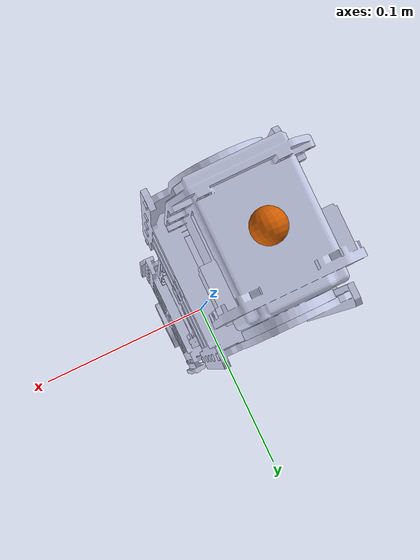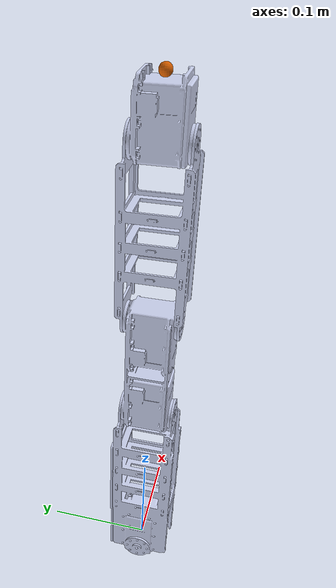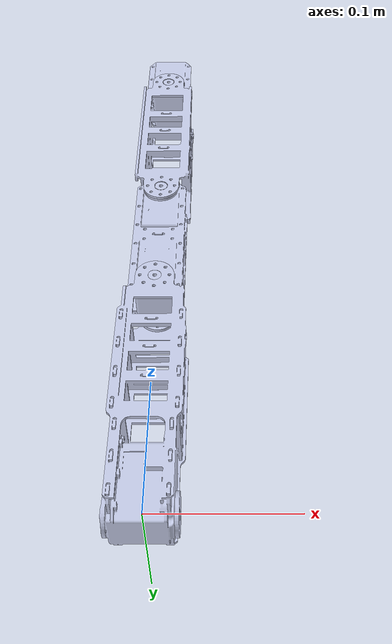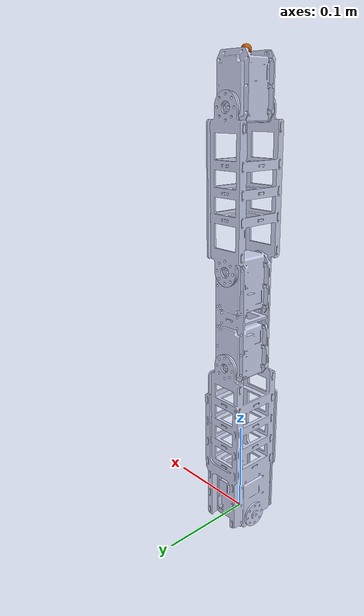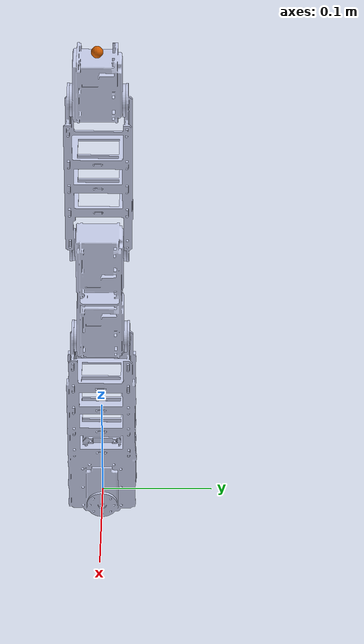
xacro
<?xml version="1.0"?>

<robot name="asap_manipulator_4r" xmlns:xacro="http://ros.org/wiki/xacro">

  <xacro:include filename="$(find aerial_manipulators_description)/urdf/manipulator_base.urdf.xacro" />

  <link name="world"></link>

  <xacro:asap_manipulator_4r
    parent="world">
    <origin xyz="0 0 0" rpy="0 -${pi/2} 0"/>
  </xacro:asap_manipulator_4r>

  <xacro:transmisija
    trans_number="1"
    joint_name="joint1">
  </xacro:transmisija>

  <xacro:transmisija
    trans_number="2"
    joint_name="joint2">
  </xacro:transmisija>

  <xacro:transmisija
    trans_number="3"
    joint_name="joint3">
  </xacro:transmisija>

  <xacro:transmisija
    trans_number="4"
    joint_name="joint4">
  </xacro:transmisija>

</robot>

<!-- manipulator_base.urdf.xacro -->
<robot xmlns:xacro="http://ros.org/wiki/xacro">

  <xacro:macro name="wp_manipulator" params="parent *origin">

    <xacro:property name="a0" value="0.04526"/>
    <xacro:property name="a1" value="0.122490"/>
    <xacro:property name="a2" value="0.1365"/>
    <xacro:property name="a3" value="0.075511"/>
    <xacro:property name="a4" value="0.072489"/>
    <xacro:property name="d5" value="0.04526"/>
    <xacro:property name="theta1" value="${pi/2}"/>
    <xacro:property name="alpha2" value="${-pi/2}"/>

    <xacro:property name="mass2" value="0.03"/>
    <xacro:property name="mass1" value="${mass2*a1/a2}"/>
    <xacro:property name="mass3" value="${mass2*a3/a2}"/>
    <xacro:property name="mass4" value="${mass2*a4/a2}"/>
    <xacro:property name="mass5" value="${mass2*d5/a2}"/>

    <xacro:property name="rad" value="0.03"/>

    <link name='base'>
      <inertial>
        <mass value="${mass5}" />
        <origin xyz="0 -${a0/2} 0" rpy="0 0 0"/>
        <inertia
          ixx="${1/2 * mass5 * rad * rad}" ixy="0" ixz="0"
          iyx="0" iyy="${1/12 * mass5 * (3*rad*rad + a0*a0)}" iyz="0"
          izx="0" izy="0" izz="${1/12 * mass5 * (3*rad*rad + a0*a0)}"/>
      </inertial>

      <visual>
        <origin xyz="0 0 0" rpy="0 0 0" />
        <geometry>
          <mesh filename="package://aerial_manipulators_description/meshes/wp_manipulator/base.dae"
            scale="1 1 1" />
        </geometry>
      </visual>
    </link>

    <link name='link1'>
      <inertial>
        <mass value="${mass1}" />
        <origin xyz="0 ${a1/2} 0" rpy="0 0 0"/>
        <inertia
          ixx="${1/12 * mass1 * (3*rad*rad + a1*a1)}" ixy="0" ixz="0"
          iyx="0" iyy="${1/2 * mass1 * rad * rad}" iyz="0"
          izx="0" izy="0" izz="${1/12 * mass1 * (3*rad*rad + a1*a1)}"/>
      </inertial>

      <visual>
        <origin xyz="0 0 0" rpy="0 0 0" />
        <geometry>
          <mesh filename="package://aerial_manipulators_description/meshes/wp_manipulator/link1.dae"
            scale="1 1 1" />
        </geometry>
      </visual>
    </link>

    <link name='link2'>
      <inertial>
        <mass value="${mass2}" />
        <origin xyz="${a2/2} 0 0" rpy="0 0 0"/>
        <inertia
          ixx="${1/2 * mass2 * rad * rad}" ixy="0" ixz="0"
          iyx="0" iyy="${1/12 * mass2 * (3*rad*rad + a2*a2)}" iyz="0"
          izx="0" izy="0" izz="${1/12 * mass2 * (3*rad*rad + a2*a2)}"/>
      </inertial>

      <visual>
        <origin xyz="0 0 0" rpy="0 0 -${pi / 2}" />
        <geometry>
          <mesh filename="package://aerial_manipulators_description/meshes/wp_manipulator/link2.dae"
            scale="1 1 1" />
        </geometry>
      </visual>
    </link>

    <link name='link3'>
      <inertial>
        <mass value="${mass3}" />
        <origin xyz="${a3/2} 0 0" rpy="0 0 0"/>
        <inertia
          ixx="${1/2 * mass3 * rad * rad}" ixy="0" ixz="0"
          iyx="0" iyy="${1/12 * mass3 * (3*rad*rad + a3*a3)}" iyz="0"
          izx="0" izy="0" izz="${1/12 * mass3 * (3*rad*rad + a3*a3)}"/>
      </inertial>

      <visual>
        <origin xyz="0 0 0" rpy="0 ${pi / 2} ${-pi / 2}" />
        <geometry>
          <mesh filename="package://aerial_manipulators_description/meshes/wp_manipulator/link3.dae"
            scale="1 1 1" />
        </geometry>
      </visual>
    </link>

    <link name='link4'>
      <inertial>
        <mass value="${mass4}" />
        <origin xyz="${a4/2} 0 0" rpy="0 0 0"/>
        <inertia
          ixx="${1/2 * mass4 * rad * rad}" ixy="0" ixz="0"
          iyx="0" iyy="${1/12 * mass4 * (3*rad*rad + a4*a4)}" iyz="0"
          izx="0" izy="0" izz="${1/12 * mass4 * (3*rad*rad + a4*a4)}"/>
      </inertial>

      <visual>
        <origin xyz="0 0 0" rpy="0 ${pi / 2} -${pi / 2}" />
        <geometry>
          <mesh filename="package://aerial_manipulators_description/meshes/wp_manipulator/link4.dae"
            scale="1 1 1" />
        </geometry>
      </visual>
    </link>

    <link name='link5'>
      <inertial>
        <mass value="${mass5}" />
        <origin xyz="${d5/2} 0 0" rpy="0 0 0"/>
        <inertia
          ixx="${1/2 * mass5 * rad * rad}" ixy="0" ixz="0"
          iyx="0" iyy="${1/12 * mass5 * (3*rad*rad + d5*d5)}" iyz="0"
          izx="0" izy="0" izz="${1/12 * mass5 * (3*rad*rad + d5*d5)}"/>
      </inertial>

      <visual>
        <origin xyz="0 0 0" rpy="0 ${pi / 2} 0" />
        <geometry>
          <mesh filename="package://aerial_manipulators_description/meshes/wp_manipulator/link5.dae"
            scale="1 1 1" />
        </geometry>
      </visual>
    </link>

    <link name='end_effector_base'>
      <inertial>
        <mass value="0.00001" />
        <origin xyz="0 0 0" rpy="0 0 0"/>
        <inertia
          ixx="0.00001" ixy="0" ixz="0"
          iyx="0" iyy="0.00001" iyz="0"
          izx="0" izy="0" izz="0.00001"/>
      </inertial>

      <visual>
        <geometry>
          <sphere radius="0.005"/>
        </geometry>
      </visual>
    </link>

    <joint name="wp_base_joint" type="fixed">
      <parent link="${parent}"/>
      <child link="base"/>
      <xacro:insert_block name="origin"/>
    </joint>

    <joint name="joint1" type="revolute">
      <parent link="base"/>
      <child link="link1"/>
      <!-- Adjust Gazebo coordinate system to link1 coordinate system -->
      <origin xyz="0 0 0" rpy="0 0 0"/>
      <limit upper="1.57" lower="-1.57" effort="10000000" velocity="46"/>
      <axis xyz="0 0 1" />
    </joint>

    <joint name="joint2" type="revolute">
      <parent link="link1"/>
      <child link="link2"/>
      <origin xyz="0 ${a1} 0" rpy="0 0 ${theta1}"/>
      <limit upper="2.0" lower="-2.0" effort="10000000" velocity="46"/>
      <axis xyz="0 0 1" />
    </joint>

    <joint name="joint3" type="revolute">
      <parent link="link2"/>
      <child link="link3"/>
      <origin xyz="${a2} 0 0" rpy="${alpha2} 0 0"/>
      <limit upper="1.57" lower="-1.57" effort="10000000" velocity="46"/>
      <axis xyz="0 0 1" />
    </joint>

    <joint name="joint4" type="revolute">
      <parent link="link3"/>
      <child link="link4"/>
      <origin xyz="${a3} 0 0" rpy="0 0 0"/>
      <limit upper="2.0" lower="-2.0" effort="10000000" velocity="46"/>
      <axis xyz="0 0 1" />
    </joint>

    <joint name="joint5" type="revolute">
      <parent link="link4"/>
      <child link="link5"/>
      <origin xyz="${a4} 0 0" rpy="0 0 0"/>
      <limit upper="2.3" lower="-2.3" effort="10000000" velocity="46"/>
      <axis xyz="0 0 1" />
    </joint>

    <joint name="jointEndEffectorBase" type="fixed">
      <parent link="link5"/>
      <child link="end_effector_base"/>
      <origin xyz="${d5} 0 0" rpy="0 0 0"/>
    </joint>
  </xacro:macro>

  <xacro:macro name="wp_manipulator_3rx"
  params="parent *origin">

    <xacro:property name="a0" value="0.04526"/>
    <xacro:property name="a1" value="0.122490"/>
    <xacro:property name="a2" value="0.1365"/>
    <xacro:property name="a3" value="0.075511"/>
    <xacro:property name="a4" value="0.072489"/>
    <xacro:property name="d5" value="0.04526"/>
    <xacro:property name="theta1" value="${pi/2}"/>
    <xacro:property name="alpha2" value="${-pi/2}"/>

    <xacro:property name="mass2" value="0.03"/>
    <xacro:property name="mass1" value="${mass2*a1/a2}"/>
    <xacro:property name="mass3" value="${mass2*a3/a2}"/>
    <xacro:property name="mass4" value="${mass2*a4/a2}"/>
    <xacro:property name="mass5" value="${mass2*d5/a2}"/>

    <xacro:property name="rad" value="0.03"/>

    <link name='base'>
      <inertial>
        <mass value="${mass2}" />
        <origin xyz="${a2/2} 0 0" rpy="0 0 0"/>
        <inertia
          ixx="${1/2 * mass2 * rad * rad}" ixy="0" ixz="0"
          iyx="0" iyy="${1/12 * mass2 * (3*rad*rad + a2*a2)}" iyz="0"
          izx="0" izy="0" izz="${1/12 * mass2 * (3*rad*rad + a2*a2)}"/>
      </inertial>

      <visual>
        <origin xyz="0 0 0" rpy="0 0 -${pi / 2}" />
        <geometry>
          <mesh filename="package://aerial_manipulators_description/meshes/wp_manipulator/link2.dae"
            scale="1 1 1" />
        </geometry>
      </visual>
    </link>

    <link name='link1'>
      <inertial>
        <mass value="${mass3}" />
        <origin xyz="${a3/2} 0 0" rpy="0 0 0"/>
        <inertia
          ixx="${1/2 * mass3 * rad * rad}" ixy="0" ixz="0"
          iyx="0" iyy="${1/12 * mass3 * (3*rad*rad + a3*a3)}" iyz="0"
          izx="0" izy="0" izz="${1/12 * mass3 * (3*rad*rad + a3*a3)}"/>
      </inertial>

      <visual>
        <origin xyz="0 0 0" rpy="0 ${pi / 2} ${-pi / 2}" />
        <geometry>
          <mesh filename="package://aerial_manipulators_description/meshes/wp_manipulator/link3.dae"
            scale="1 1 1" />
        </geometry>
      </visual>
    </link>

    <link name='link2'>
      <inertial>
        <mass value="${mass4}" />
        <origin xyz="${a4/2} 0 0" rpy="0 0 0"/>
        <inertia
          ixx="${1/2 * mass4 * rad * rad}" ixy="0" ixz="0"
          iyx="0" iyy="${1/12 * mass4 * (3*rad*rad + a4*a4)}" iyz="0"
          izx="0" izy="0" izz="${1/12 * mass4 * (3*rad*rad + a4*a4)}"/>
      </inertial>

      <visual>
        <origin xyz="0 0 0" rpy="0 ${pi / 2} -${pi / 2}" />
        <geometry>
          <mesh filename="package://aerial_manipulators_description/meshes/wp_manipulator/link4.dae"
            scale="1 1 1" />
        </geometry>
      </visual>
    </link>

    <link name='link3'>
      <inertial>
        <mass value="${mass5}" />
        <origin xyz="${d5/2} 0 0" rpy="0 0 0"/>
        <inertia
          ixx="${1/2 * mass5 * rad * rad}" ixy="0" ixz="0"
          iyx="0" iyy="${1/12 * mass5 * (3*rad*rad + d5*d5)}" iyz="0"
          izx="0" izy="0" izz="${1/12 * mass5 * (3*rad*rad + d5*d5)}"/>
      </inertial>

      <visual>
        <origin xyz="0 0 0" rpy="0 ${pi / 2} 0" />
        <geometry>
          <mesh filename="package://aerial_manipulators_description/meshes/wp_manipulator/link5.dae"
            scale="1 1 1" />
        </geometry>
      </visual>
    </link>

    <link name='end_effector_base'>
      <inertial>
        <mass value="0.00001" />
        <origin xyz="0 0 0" rpy="0 0 0"/>
        <inertia
          ixx="0.00001" ixy="0" ixz="0"
          iyx="0" iyy="0.00001" iyz="0"
          izx="0" izy="0" izz="0.00001"/>
      </inertial>

      <visual>
        <geometry>
          <sphere radius="0.005"/>
        </geometry>
      </visual>
    </link>

    <joint name="wp_base_joint" type="fixed">
      <parent link="${parent}"/>
      <child link="base"/>
      <xacro:insert_block name="origin"/>
    </joint>

    <joint name="joint1" type="revolute">
      <parent link="base"/>
      <child link="link1"/>
      <origin xyz="${a2} 0 0" rpy="${alpha2} 0 0"/>
      <limit upper="1.57" lower="-1.57" effort="10000000" velocity="46"/>
      <axis xyz="0 0 1" />
    </joint>

    <joint name="joint2" type="revolute">
      <parent link="link1"/>
      <child link="link2"/>
      <origin xyz="${a3} 0 0" rpy="0 0 0"/>
      <limit upper="2.0" lower="-2.0" effort="10000000" velocity="46"/>
      <axis xyz="0 0 1" />
    </joint>

    <joint name="joint3" type="revolute">
      <parent link="link2"/>
      <child link="link3"/>
      <origin xyz="${a4} 0 0" rpy="0 0 0"/>
      <limit upper="2.3" lower="-2.3" effort="10000000" velocity="46"/>
      <axis xyz="0 0 1" />
    </joint>

    <joint name="jointEndEffectorBase" type="fixed">
      <parent link="link3"/>
      <child link="end_effector_base"/>
      <origin xyz="${d5} 0 0" rpy="0 0 0"/>
    </joint>

  </xacro:macro>

  <xacro:macro name="wp_manipulator_3r"
  params="parent *origin">

    <xacro:property name="a0" value="0.04526"/>
    <xacro:property name="a1" value="0.122490"/>
    <xacro:property name="a2" value="0.1365"/>
    <xacro:property name="a3" value="0.075511"/>
    <xacro:property name="a4" value="0.072489"/>
    <xacro:property name="d5" value="0.035"/>
    <xacro:property name="theta1" value="${pi/2}"/>
    <xacro:property name="alpha2" value="${-pi/2}"/>

    <xacro:property name="mass2" value="0.03"/>
    <xacro:property name="mass1" value="${mass2*a1/a2}"/>
    <xacro:property name="mass3" value="${mass2*a3/a2}"/>
    <xacro:property name="mass4" value="${mass2*a4/a2}"/>
    <xacro:property name="mass5" value="${mass2*d5/a2}"/>

    <xacro:property name="rad" value="0.03"/>

    <link name='base'>
      <inertial>
        <mass value="${mass5}" />
        <origin xyz="0 -${a0/2} 0" rpy="0 0 0"/>
        <inertia
          ixx="${1/2 * mass5 * rad * rad}" ixy="0" ixz="0"
          iyx="0" iyy="${1/12 * mass5 * (3*rad*rad + a0*a0)}" iyz="0"
          izx="0" izy="0" izz="${1/12 * mass5 * (3*rad*rad + a0*a0)}"/>
      </inertial>

      <visual>
        <origin xyz="0 0 0" rpy="0 0 0" />
        <geometry>
          <mesh filename="package://aerial_manipulators_description/meshes/wp_manipulator/base.dae"
            scale="1 1 1" />
        </geometry>
      </visual>
    </link>

    <link name='link1'>
      <inertial>
        <mass value="${mass2}" />
        <origin xyz="${a2/2} 0 0" rpy="0 0 0"/>
        <inertia
          ixx="${1/2 * mass2 * rad * rad}" ixy="0" ixz="0"
          iyx="0" iyy="${1/12 * mass2 * (3*rad*rad + a2*a2)}" iyz="0"
          izx="0" izy="0" izz="${1/12 * mass2 * (3*rad*rad + a2*a2)}"/>
      </inertial>

      <visual>
        <origin xyz="0 0 0" rpy="0 0 0" />
        <geometry>
          <mesh filename="package://aerial_manipulators_description/meshes/wp_manipulator/link2_rotated.dae"
            scale="1 1 1" />
        </geometry>
      </visual>
    </link>

    <link name='link2'>
      <inertial>
        <mass value="${mass4}" />
        <origin xyz="${a4/2} 0 0" rpy="0 0 0"/>
        <inertia
          ixx="${1/2 * mass4 * rad * rad}" ixy="0" ixz="0"
          iyx="0" iyy="${1/12 * mass4 * (3*rad*rad + a4*a4)}" iyz="0"
          izx="0" izy="0" izz="${1/12 * mass4 * (3*rad*rad + a4*a4)}"/>
      </inertial>

      <visual>
        <origin xyz="0 0 0" rpy="0 ${pi/2} ${-pi/2}" />
        <geometry>
          <mesh filename="package://aerial_manipulators_description/meshes/wp_manipulator/link4.dae"
            scale="1 1 1" />
        </geometry>
      </visual>
    </link>

    <link name='link3'>
      <inertial>
        <mass value="${mass5}" />
        <origin xyz="${a0/2} 0 0" rpy="0 0 0"/>
        <inertia
          ixx="${1/2 * mass5 * rad * rad}" ixy="0" ixz="0"
          iyx="0" iyy="${1/12 * mass5 * (3*rad*rad + a0*a0)}" iyz="0"
          izx="0" izy="0" izz="${1/12 * mass5 * (3*rad*rad + a0*a0)}"/>
      </inertial>

      <visual>
        <origin xyz="0 0 0" rpy="0 ${pi / 2} 0" />
        <geometry>
          <mesh filename="package://aerial_manipulators_description/meshes/wp_manipulator/link5.dae"
            scale="1 1 1" />
        </geometry>
      </visual>
    </link>

    <link name='end_effector_base'>
      <inertial>
        <mass value="0.00001" />
        <origin xyz="0 0 0" rpy="0 0 0"/>
        <inertia
          ixx="0.00001" ixy="0" ixz="0"
          iyx="0" iyy="0.00001" iyz="0"
          izx="0" izy="0" izz="0.00001"/>
      </inertial>

      <visual>
        <geometry>
          <sphere radius="0.005"/>
        </geometry>
      </visual>
    </link>

    <joint name="wp_base_joint" type="fixed">
      <parent link="${parent}"/>
      <child link="base"/>
      <xacro:insert_block name="origin"/>
    </joint>

    <joint name="joint1" type="revolute">
      <parent link="base"/>
      <child link="link1"/>
      <!-- Adjust Gazebo coordinate system to link1 coordinate system -->
      <origin xyz="0 0 0" rpy="0 0 0"/>
      <limit upper="1.57" lower="-0.25" effort="10000000" velocity="46"/>
      <axis xyz="0 0 1" />
    </joint>

    <joint name="joint2" type="revolute">
      <parent link="link1"/>
      <child link="link2"/>
      <origin xyz="0 ${a2} 0" rpy="${-pi/2} 0 ${pi/2}"/>
      <limit upper="1.57" lower="-1.57" effort="10000000" velocity="46"/>
      <axis xyz="0 0 1" />
    </joint>

    <joint name="joint3" type="revolute">
      <parent link="link2"/>
      <child link="link3"/>
      <origin xyz="${a4} 0 0" rpy="0 0 0"/>
      <limit upper="1.57" lower="-1.57" effort="10000000" velocity="46"/>
      <axis xyz="0 0 1" />
    </joint>

    <joint name="jointEndEffectorBase" type="fixed">
      <parent link="link3"/>
      <child link="end_effector_base"/>
      <origin xyz="${d5} 0 0" rpy="0 0 0"/>
    </joint>

  </xacro:macro>

  <xacro:macro name="asap_manipulator"
  params="parent *origin">

    <link name='base'>
      <inertial>
        <mass value="0.0805"/>
        <origin rpy="0 0 0" xyz="-0.01720524 -0.00000105 -0.00015302"/>
        <inertia ixx="0.00002046" ixy="0.0" ixz="0.00000037" iyx="0.0" iyy="0.00003873" iyz="0.0" izx="0.00000037" izy="0.0" izz="0.00003291"/>
      </inertial>

      <visual>
        <origin xyz="0 0 0" rpy="0 0 0" />
        <geometry>
          <mesh filename="package://aerial_manipulators_description/meshes/asap_manipulator/base_link.dae" scale="1 1 1"/>
        </geometry>
      </visual>
    </link>

    <link name="link1">
      <inertial>
        <mass value="0.032"/>
        <origin rpy="0 0 0" xyz="0.07549999 0.0 0.0"/>
        <inertia ixx="0.00002461" ixy="0.0" ixz="0.0" iyx="0.0" iyy="0.00007186" iyz="0.0" izx="0.0" izy="0.0" izz="0.00006467"/>
      </inertial>

      <visual>
        <origin rpy="0 0 0" xyz="0.0 0.0 0.0"/>
        <geometry>
          <mesh filename="package://aerial_manipulators_description/meshes/asap_manipulator/link1.dae" scale="1 1 1"/>
        </geometry>
      </visual>
    </link>

    <link name="link2">
      <inertial>
        <mass value="0.124"/>
        <origin rpy="0 0 0" xyz="0.04579089 0.00000307 -0.00007578"/>
        <inertia ixx="0.00005883" ixy="0.0" ixz="-0.00000004" iyx="0.0" iyy="0.00032946" iyz="0.0" izx="-0.00000004" izy="0.0" izz="0.00033468"/>
      </inertial>

      <visual>
        <origin rpy="0 0 0" xyz="0.0 0.0 0.0"/>
        <geometry>
          <mesh filename="package://aerial_manipulators_description/meshes/asap_manipulator/link2.dae" scale="1 1 1"/>
        </geometry>
      </visual>
    </link>

    <link name="link3">
      <inertial>
        <mass value="0.154"/>
        <origin rpy="0 0 0" xyz="0.05074787 -0.00000371 -0.00012646"/>
        <inertia ixx="0.00003915" ixy="0.0" ixz="0.0" iyx="0.0" iyy="0.00025748" iyz="0.0" izx="0.0" izy="0.0" izz="0.00024598"/>
      </inertial>

      <visual>
       <origin rpy="0 0 0" xyz="0.0 0.0 0.0"/>
       <geometry>
         <mesh filename="package://aerial_manipulators_description/meshes/asap_manipulator/link3.dae" scale="1 1 1"/>
       </geometry>
      </visual>
    </link>

    <link name="link4">
      <inertial>
       <mass value="0.03253"/>
        <origin rpy="0 0 0" xyz="0.07550004 0.0 0.0"/>
        <inertia ixx="0.00002461" ixy="0.0" ixz="0.0" iyx="0.0" iyy="0.00007186" iyz="0.0" izx="0.0" izy="0.0" izz="0.00006467"/>
      </inertial>

      <visual>
       <origin rpy="0 0 0" xyz="0.0 0.0 0.0"/>
       <geometry>
         <mesh filename="package://aerial_manipulators_description/meshes/asap_manipulator/link4.dae" scale="1 1 1"/>
       </geometry>
      </visual>
    </link>

    <link name="link5">
      <inertial>
       <mass value="0.0073"/>
        <origin rpy="0 0 0" xyz="0.01488432 0.0 -0.00013634"/>
        <inertia ixx="0.0000001754" ixy="0.0" ixz="-0.0000000035" iyx="0.0" iyy="0.0000003064" iyz="0.0" izx="-0.0000000035" izy="0.0" izz="0.0000002513"/>
      </inertial>

      <visual>
       <origin rpy="0 0 0" xyz="0.0 0.0 0.0"/>
       <geometry>
         <mesh filename="package://aerial_manipulators_description/meshes/asap_manipulator/link5.dae" scale="1 1 1"/>
       </geometry>
      </visual>
    </link>

    <link name='end_effector_base'>
      <inertial>
        <mass value="0.00001" />
        <origin xyz="0 0 0" rpy="0 0 0"/>
        <inertia
          ixx="0.00001" ixy="0" ixz="0"
          iyx="0" iyy="0.00001" iyz="0"
          izx="0" izy="0" izz="0.00001"/>
      </inertial>

      <visual>
        <geometry>
          <sphere radius="0.005"/>
        </geometry>
      </visual>
    </link>

    <joint name="asap_base_joint" type="fixed">
      <parent link="${parent}"/>
      <child link="base"/>
      <xacro:insert_block name="origin"/>
    </joint>

    <joint name="joint1" type="revolute">
      <parent link="base"/>
      <child link="link1"/>
      <!-- Adjust Gazebo coordinate system to link1 coordinate system -->
      <origin xyz="0 0 0" rpy="0 0 0"/>
      <limit upper="1.57" lower="-1.57" effort="10000000" velocity="46"/>
      <axis xyz="0 0 1" />
    </joint>

    <joint name="joint2" type="revolute">
      <parent link="link1"/>
      <child link="link2"/>
      <origin xyz="0.151 0 0" rpy="0 0 0"/>
      <limit upper="2.0" lower="-2.0" effort="10000000" velocity="46"/>
      <axis xyz="0 0 1" />
    </joint>

    <joint name="joint3" type="revolute">
      <parent link="link2"/>
      <child link="link3"/>
      <origin xyz="0.17955 0 0" rpy="${pi/2} 0 0"/>
      <limit upper="1.57" lower="-1.57" effort="10000000" velocity="46"/>
      <axis xyz="0 0 1" />
    </joint>

    <joint name="joint4" type="revolute">
      <parent link="link3"/>
      <child link="link4"/>
      <origin xyz="0.1015 0 0" rpy="0 0 0"/>
      <limit upper="2.0" lower="-2.0" effort="10000000" velocity="46"/>
      <axis xyz="0 0 1" />
    </joint>

    <joint name="joint5" type="revolute">
      <parent link="link4"/>
      <child link="link5"/>
      <origin xyz="0.151 0 0" rpy="0 0 0"/>
      <limit upper="2.3" lower="-2.3" effort="10000000" velocity="46"/>
      <axis xyz="0 0 1" />
    </joint>

    <joint name="jointEndEffectorBase" type="fixed">
      <parent link="link5"/>
      <child link="end_effector_base"/>
      <origin xyz="0.048 0 0" rpy="0 0 0"/>
    </joint>

  </xacro:macro>

  <xacro:macro name="asap_manipulator_4r"
  params="parent *origin">

    <link name="link1">
      <inertial>
        <mass value="0.124"/>
        <origin rpy="0 0 0" xyz="0.04579089 0.00000307 -0.00007578"/>
        <inertia ixx="0.00005883" ixy="0.0" ixz="-0.00000004" iyx="0.0" iyy="0.00032946" iyz="0.0" izx="-0.00000004" izy="0.0" izz="0.00033468"/>
      </inertial>

      <visual>
        <origin rpy="0 0 0" xyz="0.0 0.0 0.0"/>
        <geometry>
          <mesh filename="package://aerial_manipulators_description/meshes/asap_manipulator/link2.dae" scale="1 1 1"/>
        </geometry>
      </visual>
    </link>

    <link name="link2">
      <inertial>
        <mass value="0.154"/>
        <origin rpy="0 0 0" xyz="0.05074787 -0.00000371 -0.00012646"/>
        <inertia ixx="0.00003915" ixy="0.0" ixz="0.0" iyx="0.0" iyy="0.00025748" iyz="0.0" izx="0.0" izy="0.0" izz="0.00024598"/>
      </inertial>

      <visual>
       <origin rpy="0 0 0" xyz="0.0 0.0 0.0"/>
       <geometry>
         <mesh filename="package://aerial_manipulators_description/meshes/asap_manipulator/link3.dae" scale="1 1 1"/>
       </geometry>
      </visual>
    </link>

    <link name="link3">
      <inertial>
       <mass value="0.03253"/>
        <origin rpy="0 0 0" xyz="0.07550004 0.0 0.0"/>
        <inertia ixx="0.00002461" ixy="0.0" ixz="0.0" iyx="0.0" iyy="0.00007186" iyz="0.0" izx="0.0" izy="0.0" izz="0.00006467"/>
      </inertial>

      <visual>
       <origin rpy="0 0 0" xyz="0.0 0.0 0.0"/>
       <geometry>
         <mesh filename="package://aerial_manipulators_description/meshes/asap_manipulator/link4.dae" scale="1 1 1"/>
       </geometry>
      </visual>
    </link>

    <link name="link4">
      <inertial>
       <mass value="0.0073"/>
        <origin rpy="0 0 0" xyz="0.01488432 0.0 -0.00013634"/>
        <inertia ixx="0.0000001754" ixy="0.0" ixz="-0.0000000035" iyx="0.0" iyy="0.0000003064" iyz="0.0" izx="-0.0000000035" izy="0.0" izz="0.0000002513"/>
      </inertial>

      <visual>
       <origin rpy="0 0 0" xyz="0.0 0.0 0.0"/>
       <geometry>
         <mesh filename="package://aerial_manipulators_description/meshes/asap_manipulator/link5.dae" scale="1 1 1"/>
       </geometry>
      </visual>
    </link>

    <link name='end_effector_base'>
      <inertial>
        <mass value="0.00001" />
        <origin xyz="0 0 0" rpy="0 0 0"/>
        <inertia
          ixx="0.00001" ixy="0" ixz="0"
          iyx="0" iyy="0.00001" iyz="0"
          izx="0" izy="0" izz="0.00001"/>
      </inertial>

      <visual>
        <geometry>
          <sphere radius="0.005"/>
        </geometry>
      </visual>
    </link>

    <joint name="joint1" type="revolute">
      <parent link="${parent}"/>
      <child link="link1"/>
      <xacro:insert_block name="origin"/>
      <limit upper="2.0" lower="-2.0" effort="10000000" velocity="46"/>
      <axis xyz="0 0 1" />
    </joint>

    <joint name="joint2" type="revolute">
      <parent link="link1"/>
      <child link="link2"/>
      <origin xyz="0.17955 0 0" rpy="${pi/2} 0 0"/>
      <limit upper="1.57" lower="-1.57" effort="10000000" velocity="46"/>
      <axis xyz="0 0 1" />
    </joint>

    <joint name="joint3" type="revolute">
      <parent link="link2"/>
      <child link="link3"/>
      <origin xyz="0.1015 0 0" rpy="0 0 0"/>
      <limit upper="2.0" lower="-2.0" effort="10000000" velocity="46"/>
      <axis xyz="0 0 1" />
    </joint>

    <joint name="joint4" type="revolute">
      <parent link="link3"/>
      <child link="link4"/>
      <origin xyz="0.151 0 0" rpy="0 0 0"/>
      <limit upper="2.3" lower="-2.3" effort="10000000" velocity="46"/>
      <axis xyz="0 0 1" />
    </joint>

    <joint name="jointEndEffectorBase" type="fixed">
      <parent link="link4"/>
      <child link="end_effector_base"/>
      <origin xyz="0.048 0 0" rpy="0 0 0"/>
    </joint>

  </xacro:macro>

  <xacro:macro name="transmisija" params="trans_number joint_name">
    <transmission name="transmission_${trans_number}">
      <type>transmission_interface/SimpleTransmission</type>
      <joint name="${joint_name}">
        <hardwareInterface>hardware_interface/EffortJointInterface</hardwareInterface>
      </joint>
      <actuator name="motor_${trans_number}">
        <hardwareInterface>hardware_interface/EffortActuatorInterface</hardwareInterface>
        <mechanicalReduction>1</mechanicalReduction>
      </actuator>
    </transmission>
  </xacro:macro>

</robot>
